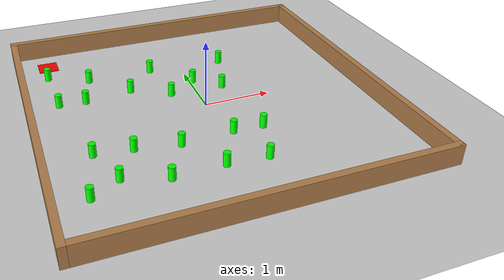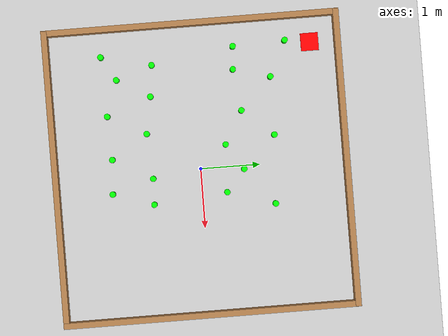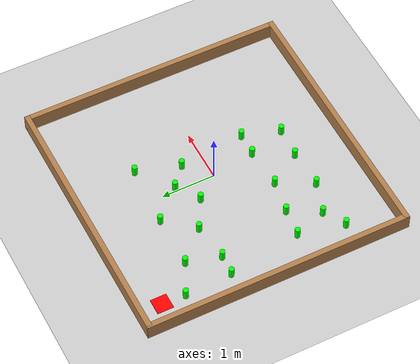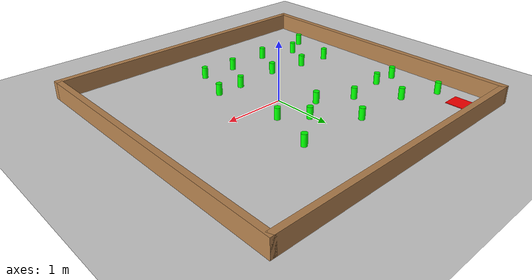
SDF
<sdf version="1.6">
 <world name="default">
  <light name="sun" type="directional">
   <pose>0 0 10 0 -0 0</pose>
   <diffuse>0.8 0.8 0.8 1</diffuse>
   <specular>0.2 0.2 0.2 1</specular>
   <attenuation>
    <range>1000</range>
    <constant>0.9</constant>
    <linear>0.01</linear>
    <quadratic>0.001</quadratic>
   </attenuation>
   <direction>-0.5 0.1 -0.9</direction>
  </light>
  <model name="ground_plane">
   <static>1</static>
   <link name="link">
    <collision name="collision">
     <geometry><plane><normal>0 0 1</normal><size>100 100</size></plane></geometry>
     <surface>
      <contact><collide_bitmask>65535</collide_bitmask></contact>
      <friction><ode><mu>100</mu><mu2>50</mu2></ode></friction>
     </surface>
    </collision>
    <visual name="visual">
     <cast_shadows>0</cast_shadows>
     <geometry><plane><normal>0 0 1</normal><size>100 100</size></plane></geometry>
     <material>
      <script><uri>file://media/materials/scripts/gazebo.material</uri><name>Gazebo/Grey</name></script>
     </material>
    </visual>
   </link>
  </model>
  <gravity>0 0 -9.8</gravity>
  <magnetic_field>6e-06 2.3e-05 -4.2e-05</magnetic_field>
  <atmosphere type="adiabatic"/>
  <physics name="default_physics" default="0" type="ode">
   <max_step_size>0.001</max_step_size>
   <real_time_factor>1</real_time_factor>
   <real_time_update_rate>1000</real_time_update_rate>
  </physics>
  <scene><ambient>0.4 0.4 0.4 1</ambient><background>0.7 0.7 0.7 1</background><shadows>1</shadows></scene>
  <spherical_coordinates>
   <surface_model>EARTH_WGS84</surface_model>
   <latitude_deg>0</latitude_deg>
   <longitude_deg>0</longitude_deg>
   <elevation>0</elevation>
   <heading_deg>0</heading_deg>
  </spherical_coordinates>
  <model name="obstacle_1">
   <pose>-1.6 -1.3 0.099999 -1e-06 -1e-06 0</pose>
   <static>0</static>
   <link name="link">
    <inertial>
     <mass>1</mass>
     <inertia><ixx>0</ixx><ixy>0</ixy><ixz>0</ixz><iyy>0</iyy><iyz>0</iyz><izz>0</izz></inertia>
    </inertial>
    <collision name="collision">
     <geometry><cylinder><radius>0.0505</radius><length>0.2</length></cylinder></geometry>
     <surface><friction><ode><mu>0</mu><mu2>0</mu2></ode></friction></surface>
    </collision>
    <visual name="visual">
     <geometry><cylinder><radius>0.0505</radius><length>0.2</length></cylinder></geometry>
     <material>
      <lighting>1</lighting>
      <script><uri>file://media/materials/scripts/gazebo.material</uri><name>Gazebo/Grey</name></script>
      <shader type="pixel"><normal_map>__default__</normal_map></shader>
      <ambient>0.3 0.3 0.3 1</ambient>
      <diffuse>0 1 0 1</diffuse>
      <specular>0.01 0.01 0.01 1</specular>
      <emissive>0 0 0 1</emissive>
     </material>
    </visual>
   </link>
  </model>
  <model name="obstacle_2">
   <pose>-1 -1.5 0.099991 -0 -0 -0</pose>
   <static>0</static>
   <link name="link">
    <inertial>
     <mass>1</mass>
     <inertia><ixx>0</ixx><ixy>0</ixy><ixz>0</ixz><iyy>0</iyy><iyz>0</iyz><izz>0</izz></inertia>
    </inertial>
    <collision name="collision">
     <geometry><cylinder><radius>0.0505</radius><length>0.2</length></cylinder></geometry>
     <surface><friction><ode><mu>0</mu><mu2>0</mu2></ode></friction></surface>
    </collision>
    <visual name="visual">
     <geometry><cylinder><radius>0.0505</radius><length>0.2</length></cylinder></geometry>
     <material>
      <lighting>1</lighting>
      <script><uri>file://media/materials/scripts/gazebo.material</uri><name>Gazebo/Grey</name></script>
      <shader type="pixel"><normal_map>__default__</normal_map></shader>
      <ambient>0.3 0.3 0.3 1</ambient>
      <diffuse>0 1 0 1</diffuse>
      <specular>0.01 0.01 0.01 1</specular>
      <emissive>0 0 0 1</emissive>
     </material>
    </visual>
   </link>
  </model>
  <model name="obstacle_3">
   <pose>-0.27 -1.47 0.1 -1e-06 -1e-06 0</pose>
   <static>0</static>
   <link name="link">
    <inertial>
     <mass>1</mass>
     <inertia><ixx>0</ixx><ixy>0</ixy><ixz>0</ixz><iyy>0</iyy><iyz>0</iyz><izz>0</izz></inertia>
    </inertial>
    <collision name="collision">
     <geometry><cylinder><radius>0.0505</radius><length>0.2</length></cylinder></geometry>
     <surface><friction><ode><mu>0</mu><mu2>0</mu2></ode></friction></surface>
    </collision>
    <visual name="visual">
     <geometry><cylinder><radius>0.0505</radius><length>0.2</length></cylinder></geometry>
     <material>
      <lighting>1</lighting>
      <script><uri>file://media/materials/scripts/gazebo.material</uri><name>Gazebo/Grey</name></script>
      <shader type="pixel"><normal_map>__default__</normal_map></shader>
      <ambient>0.3 0.3 0.3 1</ambient>
      <diffuse>0 1 0 1</diffuse>
      <specular>0.01 0.01 0.01 1</specular>
      <emissive>0 0 0 1</emissive>
     </material>
    </visual>
   </link>
  </model>
  <model name="obstacle_4">
   <pose>-1.28 -0.75 0.099991 0 -0 0</pose>
   <static>0</static>
   <link name="link">
    <inertial>
     <mass>1</mass>
     <inertia><ixx>0</ixx><ixy>0</ixy><ixz>0</ixz><iyy>0</iyy><iyz>0</iyz><izz>0</izz></inertia>
    </inertial>
    <collision name="collision">
     <geometry><cylinder><radius>0.0505</radius><length>0.2</length></cylinder></geometry>
     <surface><friction><ode><mu>0</mu><mu2>0</mu2></ode></friction></surface>
    </collision>
    <visual name="visual">
     <geometry><cylinder><radius>0.0505</radius><length>0.2</length></cylinder></geometry>
     <material>
      <lighting>1</lighting>
      <script><uri>file://media/materials/scripts/gazebo.material</uri><name>Gazebo/Grey</name></script>
      <shader type="pixel"><normal_map>__default__</normal_map></shader>
      <ambient>0.3 0.3 0.3 1</ambient>
      <diffuse>0 1 0 1</diffuse>
      <specular>0.01 0.01 0.01 1</specular>
      <emissive>0 0 0 1</emissive>
     </material>
    </visual>
   </link>
  </model>
  <model name="obstacle_5">
   <pose>-0.66 -0.86 0.099999 -1e-06 1e-06 0</pose>
   <static>0</static>
   <link name="link">
    <inertial>
     <mass>1</mass>
     <inertia><ixx>0</ixx><ixy>0</ixy><ixz>0</ixz><iyy>0</iyy><iyz>0</iyz><izz>0</izz></inertia>
    </inertial>
    <collision name="collision">
     <geometry><cylinder><radius>0.0505</radius><length>0.2</length></cylinder></geometry>
     <surface><friction><ode><mu>0</mu><mu2>0</mu2></ode></friction></surface>
    </collision>
    <visual name="visual">
     <geometry><cylinder><radius>0.0505</radius><length>0.2</length></cylinder></geometry>
     <material>
      <lighting>1</lighting>
      <script><uri>file://media/materials/scripts/gazebo.material</uri><name>Gazebo/Grey</name></script>
      <shader type="pixel"><normal_map>__default__</normal_map></shader>
      <ambient>0.3 0.3 0.3 1</ambient>
      <diffuse>0 1 0 1</diffuse>
      <specular>0.01 0.01 0.01 1</specular>
      <emissive>0 0 0 1</emissive>
     </material>
    </visual>
   </link>
  </model>
  <model name="obstacle_6">
   <pose>0.1 -0.81 0.099991 0 2e-06 0</pose>
   <static>0</static>
   <link name="link">
    <inertial>
     <mass>1</mass>
     <inertia><ixx>0</ixx><ixy>0</ixy><ixz>0</ixz><iyy>0</iyy><iyz>0</iyz><izz>0</izz></inertia>
    </inertial>
    <collision name="collision">
     <geometry><cylinder><radius>0.0505</radius><length>0.2</length></cylinder></geometry>
     <surface><friction><ode><mu>0</mu><mu2>0</mu2></ode></friction></surface>
    </collision>
    <visual name="visual">
     <geometry><cylinder><radius>0.0505</radius><length>0.2</length></cylinder></geometry>
     <material>
      <lighting>1</lighting>
      <script><uri>file://media/materials/scripts/gazebo.material</uri><name>Gazebo/Grey</name></script>
      <shader type="pixel"><normal_map>__default__</normal_map></shader>
      <ambient>0.3 0.3 0.3 1</ambient>
      <diffuse>0 1 0 1</diffuse>
      <specular>0.01 0.01 0.01 1</specular>
      <emissive>0 0 0 1</emissive>
     </material>
    </visual>
   </link>
  </model>
  <model name="obstacle_7">
   <pose>-1.63 0.67 0.1 -1e-06 1e-06 0</pose>
   <static>0</static>
   <link name="link">
    <inertial>
     <mass>1</mass>
     <inertia><ixx>0</ixx><ixy>0</ixy><ixz>0</ixz><iyy>0</iyy><iyz>0</iyz><izz>0</izz></inertia>
    </inertial>
    <collision name="collision">
     <geometry><cylinder><radius>0.0505</radius><length>0.2</length></cylinder></geometry>
     <surface><friction><ode><mu>0</mu><mu2>0</mu2></ode></friction></surface>
    </collision>
    <visual name="visual">
     <geometry><cylinder><radius>0.0505</radius><length>0.2</length></cylinder></geometry>
     <material>
      <lighting>1</lighting>
      <script><uri>file://media/materials/scripts/gazebo.material</uri><name>Gazebo/Grey</name></script>
      <shader type="pixel"><normal_map>__default__</normal_map></shader>
      <ambient>0.3 0.3 0.3 1</ambient>
      <diffuse>0 1 0 1</diffuse>
      <specular>0.01 0.01 0.01 1</specular>
      <emissive>0 0 0 1</emissive>
     </material>
    </visual>
   </link>
  </model>
  <model name="obstacle_8">
   <pose>-0.38 0.45 0.099999 -1e-06 -1e-06 0</pose>
   <static>0</static>
   <link name="link">
    <inertial>
     <mass>1</mass>
     <inertia><ixx>0</ixx><ixy>0</ixy><ixz>0</ixz><iyy>0</iyy><iyz>0</iyz><izz>0</izz></inertia>
    </inertial>
    <collision name="collision">
     <geometry><cylinder><radius>0.0505</radius><length>0.2</length></cylinder></geometry>
     <surface><friction><ode><mu>0</mu><mu2>0</mu2></ode></friction></surface>
    </collision>
    <visual name="visual">
     <geometry><cylinder><radius>0.0505</radius><length>0.2</length></cylinder></geometry>
     <material>
      <lighting>1</lighting>
      <script><uri>file://media/materials/scripts/gazebo.material</uri><name>Gazebo/Grey</name></script>
      <shader type="pixel"><normal_map>__default__</normal_map></shader>
      <ambient>0.3 0.3 0.3 1</ambient>
      <diffuse>0 1 0 1</diffuse>
      <specular>0.01 0.01 0.01 1</specular>
      <emissive>0 0 0 1</emissive>
     </material>
    </visual>
   </link>
  </model>
  <model name="obstacle_9">
   <pose>-1.46 1.29 0.099999 -1e-06 -1e-06 0</pose>
   <static>0</static>
   <link name="link">
    <inertial>
     <mass>1</mass>
     <inertia><ixx>0</ixx><ixy>0</ixy><ixz>0</ixz><iyy>0</iyy><iyz>0</iyz><izz>0</izz></inertia>
    </inertial>
    <collision name="collision">
     <geometry><cylinder><radius>0.0505</radius><length>0.2</length></cylinder></geometry>
     <surface><friction><ode><mu>0</mu><mu2>0</mu2></ode></friction></surface>
    </collision>
    <visual name="visual">
     <geometry><cylinder><radius>0.0505</radius><length>0.2</length></cylinder></geometry>
     <material>
      <lighting>1</lighting>
      <script><uri>file://media/materials/scripts/gazebo.material</uri><name>Gazebo/Grey</name></script>
      <shader type="pixel"><normal_map>__default__</normal_map></shader>
      <ambient>0.3 0.3 0.3 1</ambient>
      <diffuse>0 1 0 1</diffuse>
      <specular>0.01 0.01 0.01 1</specular>
      <emissive>0 0 0 1</emissive>
     </material>
    </visual>
   </link>
  </model>
  <model name="obstacle_10">
   <pose>-0.93 0.76 0.099991 -1e-06 0 0</pose>
   <static>0</static>
   <link name="link">
    <inertial>
     <mass>1</mass>
     <inertia><ixx>0</ixx><ixy>0</ixy><ixz>0</ixz><iyy>0</iyy><iyz>0</iyz><izz>0</izz></inertia>
    </inertial>
    <collision name="collision">
     <geometry><cylinder><radius>0.0505</radius><length>0.2</length></cylinder></geometry>
     <surface><friction><ode><mu>0</mu><mu2>0</mu2></ode></friction></surface>
    </collision>
    <visual name="visual">
     <geometry><cylinder><radius>0.0505</radius><length>0.2</length></cylinder></geometry>
     <material>
      <lighting>1</lighting>
      <script><uri>file://media/materials/scripts/gazebo.material</uri><name>Gazebo/Grey</name></script>
      <shader type="pixel"><normal_map>__default__</normal_map></shader>
      <ambient>0.3 0.3 0.3 1</ambient>
      <diffuse>0 1 0 1</diffuse>
      <specular>0.01 0.01 0.01 1</specular>
      <emissive>0 0 0 1</emissive>
     </material>
    </visual>
   </link>
  </model>
  <model name="obstacle_11">
   <pose>-0.48 1.28 0.099998 -1e-06 1e-06 0</pose>
   <static>0</static>
   <link name="link">
    <inertial>
     <mass>1</mass>
     <inertia><ixx>0</ixx><ixy>0</ixy><ixz>0</ixz><iyy>0</iyy><iyz>0</iyz><izz>0</izz></inertia>
    </inertial>
    <collision name="collision">
     <geometry><cylinder><radius>0.0505</radius><length>0.2</length></cylinder></geometry>
     <surface><friction><ode><mu>0</mu><mu2>0</mu2></ode></friction></surface>
    </collision>
    <visual name="visual">
     <geometry><cylinder><radius>0.0505</radius><length>0.2</length></cylinder></geometry>
     <material>
      <lighting>1</lighting>
      <script><uri>file://media/materials/scripts/gazebo.material</uri><name>Gazebo/Grey</name></script>
      <shader type="pixel"><normal_map>__default__</normal_map></shader>
      <ambient>0.3 0.3 0.3 1</ambient>
      <diffuse>0 1 0 1</diffuse>
      <specular>0.01 0.01 0.01 1</specular>
      <emissive>0 0 0 1</emissive>
     </material>
    </visual>
   </link>
  </model>
  <model name="obstacle_12">
   <pose>0.056 0.73 0.099999 0 -2e-06 0</pose>
   <static>0</static>
   <link name="link">
    <inertial>
     <mass>1</mass>
     <inertia><ixx>0</ixx><ixy>0</ixy><ixz>0</ixz><iyy>0</iyy><iyz>0</iyz><izz>0</izz></inertia>
    </inertial>
    <collision name="collision">
     <geometry><cylinder><radius>0.0505</radius><length>0.2</length></cylinder></geometry>
     <surface><friction><ode><mu>0</mu><mu2>0</mu2></ode></friction></surface>
    </collision>
    <visual name="visual">
     <geometry><cylinder><radius>0.0505</radius><length>0.2</length></cylinder></geometry>
     <material>
      <lighting>1</lighting>
      <script><uri>file://media/materials/scripts/gazebo.material</uri><name>Gazebo/Grey</name></script>
      <shader type="pixel"><normal_map>__default__</normal_map></shader>
      <ambient>0.3 0.3 0.3 1</ambient>
      <diffuse>0 1 0 1</diffuse>
      <specular>0.01 0.01 0.01 1</specular>
      <emissive>0 0 0 1</emissive>
     </material>
    </visual>
   </link>
  </model>
  <model name="square_room">
   <pose>-0.006074 0.00538 0 0 -0 0</pose>
   <link name="Wall_0">
    <collision name="Wall_0_Collision">
     <geometry><box><size>5 0.1 0.3</size></box></geometry>
     <pose>0 0 0.15 0 -0 0</pose>
    </collision>
    <visual name="Wall_0_Visual">
     <pose>0 0 0.15 0 -0 0</pose>
     <geometry><box><size>5 0.1 0.3</size></box></geometry>
     <material>
      <script><uri>file://media/materials/scripts/gazebo.material</uri><name>Gazebo/Wood</name></script>
      <ambient>1 1 1 1</ambient>
     </material>
     <meta><layer>0</layer></meta>
    </visual>
    <pose>-0 2.45 0 0 -0 0</pose>
   </link>
   <link name="Wall_1">
    <collision name="Wall_1_Collision">
     <geometry><box><size>5 0.1 0.3</size></box></geometry>
     <pose>0 0 0.15 0 -0 0</pose>
    </collision>
    <visual name="Wall_1_Visual">
     <pose>0 0 0.15 0 -0 0</pose>
     <geometry><box><size>5 0.1 0.3</size></box></geometry>
     <material>
      <script><uri>file://media/materials/scripts/gazebo.material</uri><name>Gazebo/Wood</name></script>
      <ambient>1 1 1 1</ambient>
     </material>
     <meta><layer>0</layer></meta>
    </visual>
    <pose>2.455 0 0 0 -0 -1.5708</pose>
   </link>
   <link name="Wall_2">
    <collision name="Wall_2_Collision">
     <geometry><box><size>5 0.1 0.3</size></box></geometry>
     <pose>0 0 0.15 0 -0 0</pose>
    </collision>
    <visual name="Wall_2_Visual">
     <pose>0 0 0.15 0 -0 0</pose>
     <geometry><box><size>5 0.1 0.3</size></box></geometry>
     <material>
      <script><uri>file://media/materials/scripts/gazebo.material</uri><name>Gazebo/Wood</name></script>
      <ambient>1 1 1 1</ambient>
     </material>
     <meta><layer>0</layer></meta>
    </visual>
    <pose>0.005 -2.45 0 0 -0 3.14159</pose>
   </link>
   <link name="Wall_3">
    <collision name="Wall_3_Collision">
     <geometry><box><size>5 0.1 0.3</size></box></geometry>
     <pose>0 0 0.15 0 -0 0</pose>
    </collision>
    <visual name="Wall_3_Visual">
     <pose>0 0 0.15 0 -0 0</pose>
     <geometry><box><size>5 0.1 0.3</size></box></geometry>
     <material>
      <script><uri>file://media/materials/scripts/gazebo.material</uri><name>Gazebo/Wood</name></script>
      <ambient>1 1 1 1</ambient>
     </material>
     <meta><layer>0</layer></meta>
    </visual>
    <pose>-2.455 0 0 0 -0 1.5708</pose>
   </link>
   <static>1</static>
  </model>
  <model name="goal_region">
   <link name="link_0">
    <inertial>
     <mass>1</mass>
     <inertia>
      <ixx>0.166667</ixx>
      <ixy>0</ixy>
      <ixz>0</ixz>
      <iyy>0.166667</iyy>
      <iyz>0</iyz>
      <izz>0.166667</izz>
     </inertia>
    </inertial>
    <gravity>0</gravity>
    <visual name="visual">
     <geometry><box><size>0.3 0.3 0.01</size></box></geometry>
     <material>
      <lighting>1</lighting>
      <script><uri>file://media/materials/scripts/gazebo.material</uri><name>Gazebo/Grey</name></script>
      <shader type="pixel"><normal_map>__default__</normal_map></shader>
      <ambient>0.3 0.3 0.3 1</ambient>
      <diffuse>1 0 0 1</diffuse>
      <specular>0.01 0.01 0.01 1</specular>
      <emissive>0 0 0 1</emissive>
     </material>
    </visual>
   </link>
   <static>0</static>
   <pose>-2 2 0 0 -0 0</pose>
  </model>
  <model name="obstacle_13">
   <pose>0.310203 -1.50737 0.099991 -1e-06 0 0</pose>
   <static>0</static>
   <link name="link">
    <inertial>
     <mass>1</mass>
     <inertia><ixx>0</ixx><ixy>0</ixy><ixz>0</ixz><iyy>0</iyy><iyz>0</iyz><izz>0</izz></inertia>
    </inertial>
    <collision name="collision">
     <geometry><cylinder><radius>0.0505</radius><length>0.2</length></cylinder></geometry>
     <surface><friction><ode><mu>0</mu><mu2>0</mu2></ode></friction></surface>
    </collision>
    <visual name="visual">
     <geometry><cylinder><radius>0.0505</radius><length>0.2</length></cylinder></geometry>
     <material>
      <lighting>1</lighting>
      <script><uri>file://media/materials/scripts/gazebo.material</uri><name>Gazebo/Grey</name></script>
      <shader type="pixel"><normal_map>__default__</normal_map></shader>
      <ambient>0.3 0.3 0.3 1</ambient>
      <diffuse>0 1 0 1</diffuse>
      <specular>0.01 0.01 0.01 1</specular>
      <emissive>0 0 0 1</emissive>
     </material>
    </visual>
   </link>
  </model>
  <model name="obstacle_14">
   <pose>0.422808 0.415746 0.099991 0 -1e-06 0</pose>
   <static>0</static>
   <link name="link">
    <inertial>
     <mass>1</mass>
     <inertia><ixx>0</ixx><ixy>0</ixy><ixz>0</ixz><iyy>0</iyy><iyz>0</iyz><izz>0</izz></inertia>
    </inertial>
    <collision name="collision">
     <geometry><cylinder><radius>0.0505</radius><length>0.2</length></cylinder></geometry>
     <surface><friction><ode><mu>0</mu><mu2>0</mu2></ode></friction></surface>
    </collision>
    <visual name="visual">
     <geometry><cylinder><radius>0.0505</radius><length>0.2</length></cylinder></geometry>
     <material>
      <lighting>1</lighting>
      <script><uri>file://media/materials/scripts/gazebo.material</uri><name>Gazebo/Grey</name></script>
      <shader type="pixel"><normal_map>__default__</normal_map></shader>
      <ambient>0.3 0.3 0.3 1</ambient>
      <diffuse>0 1 0 1</diffuse>
      <specular>0.01 0.01 0.01 1</specular>
      <emissive>0 0 0 1</emissive>
     </material>
    </visual>
   </link>
  </model>
  <model name="obstacle_15">
   <pose>0.676179 1.21299 0.099992 0 1e-06 0</pose>
   <static>0</static>
   <link name="link">
    <inertial>
     <mass>1</mass>
     <inertia><ixx>0</ixx><ixy>0</ixy><ixz>0</ixz><iyy>0</iyy><iyz>0</iyz><izz>0</izz></inertia>
    </inertial>
    <collision name="collision">
     <geometry><cylinder><radius>0.0505</radius><length>0.2</length></cylinder></geometry>
     <surface><friction><ode><mu>0</mu><mu2>0</mu2></ode></friction></surface>
    </collision>
    <visual name="visual">
     <geometry><cylinder><radius>0.0505</radius><length>0.2</length></cylinder></geometry>
     <material>
      <lighting>1</lighting>
      <script><uri>file://media/materials/scripts/gazebo.material</uri><name>Gazebo/Grey</name></script>
      <shader type="pixel"><normal_map>__default__</normal_map></shader>
      <ambient>0.3 0.3 0.3 1</ambient>
      <diffuse>0 1 0 1</diffuse>
      <specular>0.01 0.01 0.01 1</specular>
      <emissive>0 0 0 1</emissive>
     </material>
    </visual>
   </link>
  </model>
  <model name="obstacle_16">
   <pose>-1.80625 -0.688364 0.099991 0 -1e-06 0</pose>
   <static>0</static>
   <link name="link">
    <inertial>
     <mass>1</mass>
     <inertia><ixx>0</ixx><ixy>0</ixy><ixz>0</ixz><iyy>0</iyy><iyz>0</iyz><izz>0</izz></inertia>
    </inertial>
    <collision name="collision">
     <geometry><cylinder><radius>0.0505</radius><length>0.2</length></cylinder></geometry>
     <surface><friction><ode><mu>0</mu><mu2>0</mu2></ode></friction></surface>
    </collision>
    <visual name="visual">
     <geometry><cylinder><radius>0.0505</radius><length>0.2</length></cylinder></geometry>
     <material>
      <lighting>1</lighting>
      <script><uri>file://media/materials/scripts/gazebo.material</uri><name>Gazebo/Grey</name></script>
      <shader type="pixel"><normal_map>__default__</normal_map></shader>
      <ambient>0.3 0.3 0.3 1</ambient>
      <diffuse>0 1 0 1</diffuse>
      <specular>0.01 0.01 0.01 1</specular>
      <emissive>0 0 0 1</emissive>
     </material>
    </visual>
   </link>
  </model>
  <model name="obstacle_17">
   <pose>-2.00363 -1.5338 0.099991 0 2e-06 0</pose>
   <static>0</static>
   <link name="link">
    <inertial>
     <mass>1</mass>
     <inertia><ixx>0</ixx><ixy>0</ixy><ixz>0</ixz><iyy>0</iyy><iyz>0</iyz><izz>0</izz></inertia>
    </inertial>
    <collision name="collision">
     <geometry><cylinder><radius>0.0505</radius><length>0.2</length></cylinder></geometry>
     <surface><friction><ode><mu>0</mu><mu2>0</mu2></ode></friction></surface>
    </collision>
    <visual name="visual">
     <geometry><cylinder><radius>0.0505</radius><length>0.2</length></cylinder></geometry>
     <material>
      <lighting>1</lighting>
      <script><uri>file://media/materials/scripts/gazebo.material</uri><name>Gazebo/Grey</name></script>
      <shader type="pixel"><normal_map>__default__</normal_map></shader>
      <ambient>0.3 0.3 0.3 1</ambient>
      <diffuse>0 1 0 1</diffuse>
      <specular>0.01 0.01 0.01 1</specular>
      <emissive>0 0 0 1</emissive>
     </material>
    </visual>
   </link>
  </model>
  <model name="obstacle_18">
   <pose>-2.01729 0.696956 0.099991 0 2e-06 0</pose>
   <static>0</static>
   <link name="link">
    <inertial>
     <mass>1</mass>
     <inertia><ixx>0</ixx><ixy>0</ixy><ixz>0</ixz><iyy>0</iyy><iyz>0</iyz><izz>0</izz></inertia>
    </inertial>
    <collision name="collision">
     <geometry><cylinder><radius>0.0505</radius><length>0.2</length></cylinder></geometry>
     <surface><friction><ode><mu>0</mu><mu2>0</mu2></ode></friction></surface>
    </collision>
    <visual name="visual">
     <geometry><cylinder><radius>0.0505</radius><length>0.2</length></cylinder></geometry>
     <material>
      <lighting>1</lighting>
      <script><uri>file://media/materials/scripts/gazebo.material</uri><name>Gazebo/Grey</name></script>
      <shader type="pixel"><normal_map>__default__</normal_map></shader>
      <ambient>0.3 0.3 0.3 1</ambient>
      <diffuse>0 1 0 1</diffuse>
      <specular>0.01 0.01 0.01 1</specular>
      <emissive>0 0 0 1</emissive>
     </material>
    </visual>
   </link>
  </model>
  <model name="obstacle_19">
   <pose>-2.05112 1.57537 0.099991 0 1e-06 0</pose>
   <static>0</static>
   <link name="link">
    <inertial>
     <mass>1</mass>
     <inertia><ixx>0</ixx><ixy>0</ixy><ixz>0</ixz><iyy>0</iyy><iyz>0</iyz><izz>0</izz></inertia>
    </inertial>
    <collision name="collision">
     <geometry><cylinder><radius>0.0505</radius><length>0.2</length></cylinder></geometry>
     <surface><friction><ode><mu>0</mu><mu2>0</mu2></ode></friction></surface>
    </collision>
    <visual name="visual">
     <geometry><cylinder><radius>0.0505</radius><length>0.2</length></cylinder></geometry>
     <material>
      <lighting>1</lighting>
      <script><uri>file://media/materials/scripts/gazebo.material</uri><name>Gazebo/Grey</name></script>
      <shader type="pixel"><normal_map>__default__</normal_map></shader>
      <ambient>0.3 0.3 0.3 1</ambient>
      <diffuse>0 1 0 1</diffuse>
      <specular>0.01 0.01 0.01 1</specular>
      <emissive>0 0 0 1</emissive>
     </material>
    </visual>
   </link>
  </model>
  <model name="obstacle_20">
   <link name="link">
    <inertial>
     <mass>1</mass>
     <inertia><ixx>0</ixx><ixy>0</ixy><ixz>0</ixz><iyy>0</iyy><iyz>0</iyz><izz>0</izz></inertia>
    </inertial>
    <visual name="visual">
     <geometry><cylinder><radius>0.0505</radius><length>0.2</length></cylinder></geometry>
     <material>
      <lighting>1</lighting>
      <script><uri>file://media/materials/scripts/gazebo.material</uri><name>Gazebo/Grey</name></script>
      <shader type="pixel"><normal_map>__default__</normal_map></shader>
      <ambient>0.3 0.3 0.3 1</ambient>
      <diffuse>0 1 0 1</diffuse>
      <specular>0.01 0.01 0.01 1</specular>
      <emissive>0 0 0 1</emissive>
     </material>
    </visual>
    <collision name="collision">
     <geometry><cylinder><radius>0.0505</radius><length>0.2</length></cylinder></geometry>
     <surface>
      <friction>
       <ode><mu>0</mu><mu2>0</mu2><fdir1>0 0 0</fdir1><slip1>0</slip1><slip2>0</slip2></ode>
       <torsional>
        <coefficient>1</coefficient>
        <patch_radius>0</patch_radius>
        <surface_radius>0</surface_radius>
        <use_patch_radius>1</use_patch_radius>
        <ode><slip>0</slip></ode>
       </torsional>
      </friction>
      <bounce><restitution_coefficient>0</restitution_coefficient><threshold>1e+06</threshold></bounce>
      <contact>
       <collide_without_contact>0</collide_without_contact>
       <collide_without_contact_bitmask>1</collide_without_contact_bitmask>
       <collide_bitmask>1</collide_bitmask>
       <ode>
        <soft_cfm>0</soft_cfm>
        <soft_erp>0.2</soft_erp>
        <kp>1e+13</kp>
        <kd>1</kd>
        <max_vel>0.01</max_vel>
        <min_depth>0</min_depth>
       </ode>
       <bullet>
        <split_impulse>1</split_impulse>
        <split_impulse_penetration_threshold>-0.01</split_impulse_penetration_threshold>
        <soft_cfm>0</soft_cfm>
        <soft_erp>0.2</soft_erp>
        <kp>1e+13</kp>
        <kd>1</kd>
       </bullet>
      </contact>
     </surface>
    </collision>
   </link>
   <static>0</static>
   <pose>0.537473 -0.824292 0.099991 0 -1e-06 0</pose>
  </model>
 </world>
</sdf>
